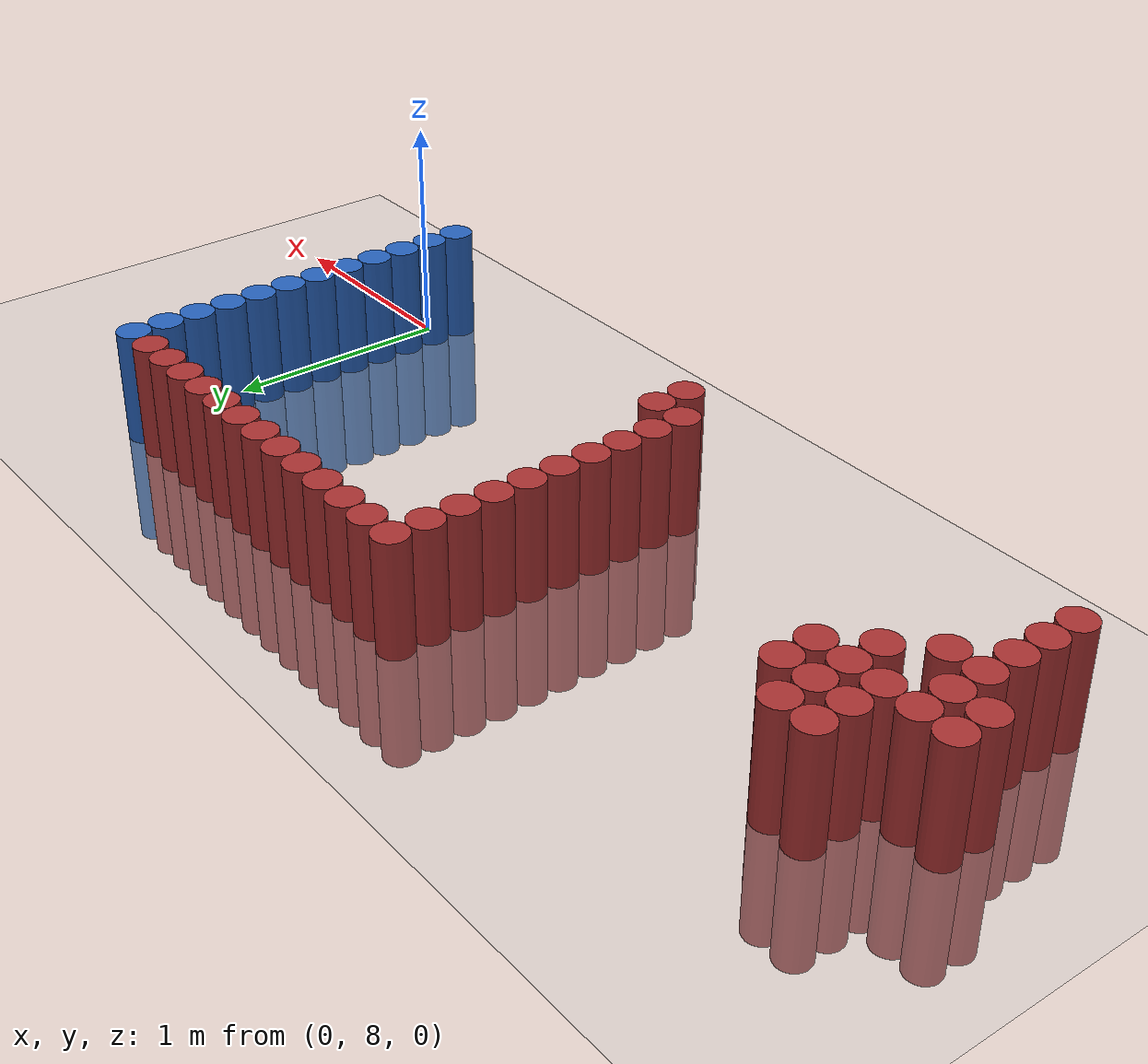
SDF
<sdf version="1.6">
 <world name="default">
  <model name="ground_plane">
   <static>1</static>
   <link name="link">
    <collision name="collision">
     <geometry><plane><normal>0 0 1</normal><size>100 100</size></plane></geometry>
     <surface><friction><ode><mu>100</mu><mu2>50</mu2></ode></friction></surface>
    </collision>
    <visual name="visual">
     <cast_shadows>0</cast_shadows>
     <geometry><plane><normal>0 0 1</normal><size>100 100</size></plane></geometry>
     <material>
      <script><uri>file://media/materials/scripts/gazebo.material</uri><name>Gazebo/Grey</name></script>
     </material>
    </visual>
   </link>
  </model>
  <model name="unit_cylinder_249">
   <static>1</static>
   <pose>-3.975000 8.625000 0.000000 0.000000 0.000000 0.000000</pose>
   <link name="link">
    <inertial>
     <mass>1</mass>
     <inertia><ixx>0.145833</ixx><ixy>0</ixy><ixz>0</ixz><iyy>0.145833</iyy><iyz>0</iyz><izz>0.125</izz></inertia>
    </inertial>
    <collision name="collision">
     <geometry><cylinder><radius>0.075000</radius><length>1</length></cylinder></geometry>
    </collision>
    <visual name="visual">
     <geometry><cylinder><radius>0.075000</radius><length>1</length></cylinder></geometry>
     <material>
      <ambient>0.648000 0.192000 0.192000 1</ambient>
      <diffuse>0.648000 0.192000 0.192000 1</diffuse>
     </material>
     <material>
      <script><name>Gazebo/Grey</name><uri>file://media/materials/scripts/gazebo.material</uri></script>
     </material>
    </visual>
   </link>
  </model>
  <model name="unit_cylinder_250">
   <static>1</static>
   <pose>-3.975000 8.775000 0.000000 0.000000 0.000000 0.000000</pose>
   <link name="link">
    <inertial>
     <mass>1</mass>
     <inertia><ixx>0.145833</ixx><ixy>0</ixy><ixz>0</ixz><iyy>0.145833</iyy><iyz>0</iyz><izz>0.125</izz></inertia>
    </inertial>
    <collision name="collision">
     <geometry><cylinder><radius>0.075000</radius><length>1</length></cylinder></geometry>
    </collision>
    <visual name="visual">
     <geometry><cylinder><radius>0.075000</radius><length>1</length></cylinder></geometry>
     <material>
      <ambient>0.648000 0.192000 0.192000 1</ambient>
      <diffuse>0.648000 0.192000 0.192000 1</diffuse>
     </material>
     <material>
      <script><name>Gazebo/Grey</name><uri>file://media/materials/scripts/gazebo.material</uri></script>
     </material>
    </visual>
   </link>
  </model>
  <model name="unit_cylinder_253">
   <static>1</static>
   <pose>-3.825000 8.025000 0.000000 0.000000 0.000000 0.000000</pose>
   <link name="link">
    <inertial>
     <mass>1</mass>
     <inertia><ixx>0.145833</ixx><ixy>0</ixy><ixz>0</ixz><iyy>0.145833</iyy><iyz>0</iyz><izz>0.125</izz></inertia>
    </inertial>
    <collision name="collision">
     <geometry><cylinder><radius>0.075000</radius><length>1</length></cylinder></geometry>
    </collision>
    <visual name="visual">
     <geometry><cylinder><radius>0.075000</radius><length>1</length></cylinder></geometry>
     <material>
      <ambient>0.648000 0.192000 0.192000 1</ambient>
      <diffuse>0.648000 0.192000 0.192000 1</diffuse>
     </material>
     <material>
      <script><name>Gazebo/Grey</name><uri>file://media/materials/scripts/gazebo.material</uri></script>
     </material>
    </visual>
   </link>
  </model>
  <model name="unit_cylinder_254">
   <static>1</static>
   <pose>-3.825000 8.175000 0.000000 0.000000 0.000000 0.000000</pose>
   <link name="link">
    <inertial>
     <mass>1</mass>
     <inertia><ixx>0.145833</ixx><ixy>0</ixy><ixz>0</ixz><iyy>0.145833</iyy><iyz>0</iyz><izz>0.125</izz></inertia>
    </inertial>
    <collision name="collision">
     <geometry><cylinder><radius>0.075000</radius><length>1</length></cylinder></geometry>
    </collision>
    <visual name="visual">
     <geometry><cylinder><radius>0.075000</radius><length>1</length></cylinder></geometry>
     <material>
      <ambient>0.648000 0.192000 0.192000 1</ambient>
      <diffuse>0.648000 0.192000 0.192000 1</diffuse>
     </material>
     <material>
      <script><name>Gazebo/Grey</name><uri>file://media/materials/scripts/gazebo.material</uri></script>
     </material>
    </visual>
   </link>
  </model>
  <model name="unit_cylinder_255">
   <static>1</static>
   <pose>-3.825000 8.325000 0.000000 0.000000 0.000000 0.000000</pose>
   <link name="link">
    <inertial>
     <mass>1</mass>
     <inertia><ixx>0.145833</ixx><ixy>0</ixy><ixz>0</ixz><iyy>0.145833</iyy><iyz>0</iyz><izz>0.125</izz></inertia>
    </inertial>
    <collision name="collision">
     <geometry><cylinder><radius>0.075000</radius><length>1</length></cylinder></geometry>
    </collision>
    <visual name="visual">
     <geometry><cylinder><radius>0.075000</radius><length>1</length></cylinder></geometry>
     <material>
      <ambient>0.648000 0.192000 0.192000 1</ambient>
      <diffuse>0.648000 0.192000 0.192000 1</diffuse>
     </material>
     <material>
      <script><name>Gazebo/Grey</name><uri>file://media/materials/scripts/gazebo.material</uri></script>
     </material>
    </visual>
   </link>
  </model>
  <model name="unit_cylinder_256">
   <static>1</static>
   <pose>-3.825000 8.475000 0.000000 0.000000 0.000000 0.000000</pose>
   <link name="link">
    <inertial>
     <mass>1</mass>
     <inertia><ixx>0.145833</ixx><ixy>0</ixy><ixz>0</ixz><iyy>0.145833</iyy><iyz>0</iyz><izz>0.125</izz></inertia>
    </inertial>
    <collision name="collision">
     <geometry><cylinder><radius>0.075000</radius><length>1</length></cylinder></geometry>
    </collision>
    <visual name="visual">
     <geometry><cylinder><radius>0.075000</radius><length>1</length></cylinder></geometry>
     <material>
      <ambient>0.648000 0.192000 0.192000 1</ambient>
      <diffuse>0.648000 0.192000 0.192000 1</diffuse>
     </material>
     <material>
      <script><name>Gazebo/Grey</name><uri>file://media/materials/scripts/gazebo.material</uri></script>
     </material>
    </visual>
   </link>
  </model>
  <model name="unit_cylinder_257">
   <static>1</static>
   <pose>-3.825000 8.625000 0.000000 0.000000 0.000000 0.000000</pose>
   <link name="link">
    <inertial>
     <mass>1</mass>
     <inertia><ixx>0.145833</ixx><ixy>0</ixy><ixz>0</ixz><iyy>0.145833</iyy><iyz>0</iyz><izz>0.125</izz></inertia>
    </inertial>
    <collision name="collision">
     <geometry><cylinder><radius>0.075000</radius><length>1</length></cylinder></geometry>
    </collision>
    <visual name="visual">
     <geometry><cylinder><radius>0.075000</radius><length>1</length></cylinder></geometry>
     <material>
      <ambient>0.648000 0.192000 0.192000 1</ambient>
      <diffuse>0.648000 0.192000 0.192000 1</diffuse>
     </material>
     <material>
      <script><name>Gazebo/Grey</name><uri>file://media/materials/scripts/gazebo.material</uri></script>
     </material>
    </visual>
   </link>
  </model>
  <model name="unit_cylinder_258">
   <static>1</static>
   <pose>-3.825000 8.775000 0.000000 0.000000 0.000000 0.000000</pose>
   <link name="link">
    <inertial>
     <mass>1</mass>
     <inertia><ixx>0.145833</ixx><ixy>0</ixy><ixz>0</ixz><iyy>0.145833</iyy><iyz>0</iyz><izz>0.125</izz></inertia>
    </inertial>
    <collision name="collision">
     <geometry><cylinder><radius>0.075000</radius><length>1</length></cylinder></geometry>
    </collision>
    <visual name="visual">
     <geometry><cylinder><radius>0.075000</radius><length>1</length></cylinder></geometry>
     <material>
      <ambient>0.648000 0.192000 0.192000 1</ambient>
      <diffuse>0.648000 0.192000 0.192000 1</diffuse>
     </material>
     <material>
      <script><name>Gazebo/Grey</name><uri>file://media/materials/scripts/gazebo.material</uri></script>
     </material>
    </visual>
   </link>
  </model>
  <model name="unit_cylinder_261">
   <static>1</static>
   <pose>-3.675000 8.475000 0.000000 0.000000 0.000000 0.000000</pose>
   <link name="link">
    <inertial>
     <mass>1</mass>
     <inertia><ixx>0.145833</ixx><ixy>0</ixy><ixz>0</ixz><iyy>0.145833</iyy><iyz>0</iyz><izz>0.125</izz></inertia>
    </inertial>
    <collision name="collision">
     <geometry><cylinder><radius>0.075000</radius><length>1</length></cylinder></geometry>
    </collision>
    <visual name="visual">
     <geometry><cylinder><radius>0.075000</radius><length>1</length></cylinder></geometry>
     <material>
      <ambient>0.648000 0.192000 0.192000 1</ambient>
      <diffuse>0.648000 0.192000 0.192000 1</diffuse>
     </material>
     <material>
      <script><name>Gazebo/Grey</name><uri>file://media/materials/scripts/gazebo.material</uri></script>
     </material>
    </visual>
   </link>
  </model>
  <model name="unit_cylinder_262">
   <static>1</static>
   <pose>-3.675000 8.775000 0.000000 0.000000 0.000000 0.000000</pose>
   <link name="link">
    <inertial>
     <mass>1</mass>
     <inertia><ixx>0.145833</ixx><ixy>0</ixy><ixz>0</ixz><iyy>0.145833</iyy><iyz>0</iyz><izz>0.125</izz></inertia>
    </inertial>
    <collision name="collision">
     <geometry><cylinder><radius>0.075000</radius><length>1</length></cylinder></geometry>
    </collision>
    <visual name="visual">
     <geometry><cylinder><radius>0.075000</radius><length>1</length></cylinder></geometry>
     <material>
      <ambient>0.648000 0.192000 0.192000 1</ambient>
      <diffuse>0.648000 0.192000 0.192000 1</diffuse>
     </material>
     <material>
      <script><name>Gazebo/Grey</name><uri>file://media/materials/scripts/gazebo.material</uri></script>
     </material>
    </visual>
   </link>
  </model>
  <model name="unit_cylinder_263">
   <static>1</static>
   <pose>-3.675000 8.925000 0.000000 0.000000 0.000000 0.000000</pose>
   <link name="link">
    <inertial>
     <mass>1</mass>
     <inertia><ixx>0.145833</ixx><ixy>0</ixy><ixz>0</ixz><iyy>0.145833</iyy><iyz>0</iyz><izz>0.125</izz></inertia>
    </inertial>
    <collision name="collision">
     <geometry><cylinder><radius>0.075000</radius><length>1</length></cylinder></geometry>
    </collision>
    <visual name="visual">
     <geometry><cylinder><radius>0.075000</radius><length>1</length></cylinder></geometry>
     <material>
      <ambient>0.648000 0.192000 0.192000 1</ambient>
      <diffuse>0.648000 0.192000 0.192000 1</diffuse>
     </material>
     <material>
      <script><name>Gazebo/Grey</name><uri>file://media/materials/scripts/gazebo.material</uri></script>
     </material>
    </visual>
   </link>
  </model>
  <model name="unit_cylinder_264">
   <static>1</static>
   <pose>-3.675000 9.075000 0.000000 0.000000 0.000000 0.000000</pose>
   <link name="link">
    <inertial>
     <mass>1</mass>
     <inertia><ixx>0.145833</ixx><ixy>0</ixy><ixz>0</ixz><iyy>0.145833</iyy><iyz>0</iyz><izz>0.125</izz></inertia>
    </inertial>
    <collision name="collision">
     <geometry><cylinder><radius>0.075000</radius><length>1</length></cylinder></geometry>
    </collision>
    <visual name="visual">
     <geometry><cylinder><radius>0.075000</radius><length>1</length></cylinder></geometry>
     <material>
      <ambient>0.648000 0.192000 0.192000 1</ambient>
      <diffuse>0.648000 0.192000 0.192000 1</diffuse>
     </material>
     <material>
      <script><name>Gazebo/Grey</name><uri>file://media/materials/scripts/gazebo.material</uri></script>
     </material>
    </visual>
   </link>
  </model>
  <model name="unit_cylinder_265">
   <static>1</static>
   <pose>-3.525000 8.625000 0.000000 0.000000 0.000000 0.000000</pose>
   <link name="link">
    <inertial>
     <mass>1</mass>
     <inertia><ixx>0.145833</ixx><ixy>0</ixy><ixz>0</ixz><iyy>0.145833</iyy><iyz>0</iyz><izz>0.125</izz></inertia>
    </inertial>
    <collision name="collision">
     <geometry><cylinder><radius>0.075000</radius><length>1</length></cylinder></geometry>
    </collision>
    <visual name="visual">
     <geometry><cylinder><radius>0.075000</radius><length>1</length></cylinder></geometry>
     <material>
      <ambient>0.648000 0.192000 0.192000 1</ambient>
      <diffuse>0.648000 0.192000 0.192000 1</diffuse>
     </material>
     <material>
      <script><name>Gazebo/Grey</name><uri>file://media/materials/scripts/gazebo.material</uri></script>
     </material>
    </visual>
   </link>
  </model>
  <model name="unit_cylinder_266">
   <static>1</static>
   <pose>-3.525000 8.775000 0.000000 0.000000 0.000000 0.000000</pose>
   <link name="link">
    <inertial>
     <mass>1</mass>
     <inertia><ixx>0.145833</ixx><ixy>0</ixy><ixz>0</ixz><iyy>0.145833</iyy><iyz>0</iyz><izz>0.125</izz></inertia>
    </inertial>
    <collision name="collision">
     <geometry><cylinder><radius>0.075000</radius><length>1</length></cylinder></geometry>
    </collision>
    <visual name="visual">
     <geometry><cylinder><radius>0.075000</radius><length>1</length></cylinder></geometry>
     <material>
      <ambient>0.648000 0.192000 0.192000 1</ambient>
      <diffuse>0.648000 0.192000 0.192000 1</diffuse>
     </material>
     <material>
      <script><name>Gazebo/Grey</name><uri>file://media/materials/scripts/gazebo.material</uri></script>
     </material>
    </visual>
   </link>
  </model>
  <model name="unit_cylinder_267">
   <static>1</static>
   <pose>-3.525000 8.925000 0.000000 0.000000 0.000000 0.000000</pose>
   <link name="link">
    <inertial>
     <mass>1</mass>
     <inertia><ixx>0.145833</ixx><ixy>0</ixy><ixz>0</ixz><iyy>0.145833</iyy><iyz>0</iyz><izz>0.125</izz></inertia>
    </inertial>
    <collision name="collision">
     <geometry><cylinder><radius>0.075000</radius><length>1</length></cylinder></geometry>
    </collision>
    <visual name="visual">
     <geometry><cylinder><radius>0.075000</radius><length>1</length></cylinder></geometry>
     <material>
      <ambient>0.648000 0.192000 0.192000 1</ambient>
      <diffuse>0.648000 0.192000 0.192000 1</diffuse>
     </material>
     <material>
      <script><name>Gazebo/Grey</name><uri>file://media/materials/scripts/gazebo.material</uri></script>
     </material>
    </visual>
   </link>
  </model>
  <model name="unit_cylinder_268">
   <static>1</static>
   <pose>-3.525000 9.075000 0.000000 0.000000 0.000000 0.000000</pose>
   <link name="link">
    <inertial>
     <mass>1</mass>
     <inertia><ixx>0.145833</ixx><ixy>0</ixy><ixz>0</ixz><iyy>0.145833</iyy><iyz>0</iyz><izz>0.125</izz></inertia>
    </inertial>
    <collision name="collision">
     <geometry><cylinder><radius>0.075000</radius><length>1</length></cylinder></geometry>
    </collision>
    <visual name="visual">
     <geometry><cylinder><radius>0.075000</radius><length>1</length></cylinder></geometry>
     <material>
      <ambient>0.648000 0.192000 0.192000 1</ambient>
      <diffuse>0.648000 0.192000 0.192000 1</diffuse>
     </material>
     <material>
      <script><name>Gazebo/Grey</name><uri>file://media/materials/scripts/gazebo.material</uri></script>
     </material>
    </visual>
   </link>
  </model>
  <model name="unit_cylinder_271">
   <static>1</static>
   <pose>-3.375000 8.775000 0.000000 0.000000 0.000000 0.000000</pose>
   <link name="link">
    <inertial>
     <mass>1</mass>
     <inertia><ixx>0.145833</ixx><ixy>0</ixy><ixz>0</ixz><iyy>0.145833</iyy><iyz>0</iyz><izz>0.125</izz></inertia>
    </inertial>
    <collision name="collision">
     <geometry><cylinder><radius>0.075000</radius><length>1</length></cylinder></geometry>
    </collision>
    <visual name="visual">
     <geometry><cylinder><radius>0.075000</radius><length>1</length></cylinder></geometry>
     <material>
      <ambient>0.648000 0.192000 0.192000 1</ambient>
      <diffuse>0.648000 0.192000 0.192000 1</diffuse>
     </material>
     <material>
      <script><name>Gazebo/Grey</name><uri>file://media/materials/scripts/gazebo.material</uri></script>
     </material>
    </visual>
   </link>
  </model>
  <model name="unit_cylinder_272">
   <static>1</static>
   <pose>-3.375000 8.925000 0.000000 0.000000 0.000000 0.000000</pose>
   <link name="link">
    <inertial>
     <mass>1</mass>
     <inertia><ixx>0.145833</ixx><ixy>0</ixy><ixz>0</ixz><iyy>0.145833</iyy><iyz>0</iyz><izz>0.125</izz></inertia>
    </inertial>
    <collision name="collision">
     <geometry><cylinder><radius>0.075000</radius><length>1</length></cylinder></geometry>
    </collision>
    <visual name="visual">
     <geometry><cylinder><radius>0.075000</radius><length>1</length></cylinder></geometry>
     <material>
      <ambient>0.648000 0.192000 0.192000 1</ambient>
      <diffuse>0.648000 0.192000 0.192000 1</diffuse>
     </material>
     <material>
      <script><name>Gazebo/Grey</name><uri>file://media/materials/scripts/gazebo.material</uri></script>
     </material>
    </visual>
   </link>
  </model>
  <model name="unit_cylinder_293">
   <static>1</static>
   <pose>-2.025000 8.175000 0.000000 0.000000 0.000000 0.000000</pose>
   <link name="link">
    <inertial>
     <mass>1</mass>
     <inertia><ixx>0.145833</ixx><ixy>0</ixy><ixz>0</ixz><iyy>0.145833</iyy><iyz>0</iyz><izz>0.125</izz></inertia>
    </inertial>
    <collision name="collision">
     <geometry><cylinder><radius>0.075000</radius><length>1</length></cylinder></geometry>
    </collision>
    <visual name="visual">
     <geometry><cylinder><radius>0.075000</radius><length>1</length></cylinder></geometry>
     <material>
      <ambient>0.648000 0.192000 0.192000 1</ambient>
      <diffuse>0.648000 0.192000 0.192000 1</diffuse>
     </material>
     <material>
      <script><name>Gazebo/Grey</name><uri>file://media/materials/scripts/gazebo.material</uri></script>
     </material>
    </visual>
   </link>
  </model>
  <model name="unit_cylinder_294">
   <static>1</static>
   <pose>-2.025000 8.325000 0.000000 0.000000 0.000000 0.000000</pose>
   <link name="link">
    <inertial>
     <mass>1</mass>
     <inertia><ixx>0.145833</ixx><ixy>0</ixy><ixz>0</ixz><iyy>0.145833</iyy><iyz>0</iyz><izz>0.125</izz></inertia>
    </inertial>
    <collision name="collision">
     <geometry><cylinder><radius>0.075000</radius><length>1</length></cylinder></geometry>
    </collision>
    <visual name="visual">
     <geometry><cylinder><radius>0.075000</radius><length>1</length></cylinder></geometry>
     <material>
      <ambient>0.648000 0.192000 0.192000 1</ambient>
      <diffuse>0.648000 0.192000 0.192000 1</diffuse>
     </material>
     <material>
      <script><name>Gazebo/Grey</name><uri>file://media/materials/scripts/gazebo.material</uri></script>
     </material>
    </visual>
   </link>
  </model>
  <model name="unit_cylinder_295">
   <static>1</static>
   <pose>-2.025000 8.475000 0.000000 0.000000 0.000000 0.000000</pose>
   <link name="link">
    <inertial>
     <mass>1</mass>
     <inertia><ixx>0.145833</ixx><ixy>0</ixy><ixz>0</ixz><iyy>0.145833</iyy><iyz>0</iyz><izz>0.125</izz></inertia>
    </inertial>
    <collision name="collision">
     <geometry><cylinder><radius>0.075000</radius><length>1</length></cylinder></geometry>
    </collision>
    <visual name="visual">
     <geometry><cylinder><radius>0.075000</radius><length>1</length></cylinder></geometry>
     <material>
      <ambient>0.648000 0.192000 0.192000 1</ambient>
      <diffuse>0.648000 0.192000 0.192000 1</diffuse>
     </material>
     <material>
      <script><name>Gazebo/Grey</name><uri>file://media/materials/scripts/gazebo.material</uri></script>
     </material>
    </visual>
   </link>
  </model>
  <model name="unit_cylinder_296">
   <static>1</static>
   <pose>-2.025000 8.625000 0.000000 0.000000 0.000000 0.000000</pose>
   <link name="link">
    <inertial>
     <mass>1</mass>
     <inertia><ixx>0.145833</ixx><ixy>0</ixy><ixz>0</ixz><iyy>0.145833</iyy><iyz>0</iyz><izz>0.125</izz></inertia>
    </inertial>
    <collision name="collision">
     <geometry><cylinder><radius>0.075000</radius><length>1</length></cylinder></geometry>
    </collision>
    <visual name="visual">
     <geometry><cylinder><radius>0.075000</radius><length>1</length></cylinder></geometry>
     <material>
      <ambient>0.648000 0.192000 0.192000 1</ambient>
      <diffuse>0.648000 0.192000 0.192000 1</diffuse>
     </material>
     <material>
      <script><name>Gazebo/Grey</name><uri>file://media/materials/scripts/gazebo.material</uri></script>
     </material>
    </visual>
   </link>
  </model>
  <model name="unit_cylinder_297">
   <static>1</static>
   <pose>-2.025000 8.775000 0.000000 0.000000 0.000000 0.000000</pose>
   <link name="link">
    <inertial>
     <mass>1</mass>
     <inertia><ixx>0.145833</ixx><ixy>0</ixy><ixz>0</ixz><iyy>0.145833</iyy><iyz>0</iyz><izz>0.125</izz></inertia>
    </inertial>
    <collision name="collision">
     <geometry><cylinder><radius>0.075000</radius><length>1</length></cylinder></geometry>
    </collision>
    <visual name="visual">
     <geometry><cylinder><radius>0.075000</radius><length>1</length></cylinder></geometry>
     <material>
      <ambient>0.648000 0.192000 0.192000 1</ambient>
      <diffuse>0.648000 0.192000 0.192000 1</diffuse>
     </material>
     <material>
      <script><name>Gazebo/Grey</name><uri>file://media/materials/scripts/gazebo.material</uri></script>
     </material>
    </visual>
   </link>
  </model>
  <model name="unit_cylinder_298">
   <static>1</static>
   <pose>-2.025000 8.925000 0.000000 0.000000 0.000000 0.000000</pose>
   <link name="link">
    <inertial>
     <mass>1</mass>
     <inertia><ixx>0.145833</ixx><ixy>0</ixy><ixz>0</ixz><iyy>0.145833</iyy><iyz>0</iyz><izz>0.125</izz></inertia>
    </inertial>
    <collision name="collision">
     <geometry><cylinder><radius>0.075000</radius><length>1</length></cylinder></geometry>
    </collision>
    <visual name="visual">
     <geometry><cylinder><radius>0.075000</radius><length>1</length></cylinder></geometry>
     <material>
      <ambient>0.648000 0.192000 0.192000 1</ambient>
      <diffuse>0.648000 0.192000 0.192000 1</diffuse>
     </material>
     <material>
      <script><name>Gazebo/Grey</name><uri>file://media/materials/scripts/gazebo.material</uri></script>
     </material>
    </visual>
   </link>
  </model>
  <model name="unit_cylinder_299">
   <static>1</static>
   <pose>-2.025000 9.075000 0.000000 0.000000 0.000000 0.000000</pose>
   <link name="link">
    <inertial>
     <mass>1</mass>
     <inertia><ixx>0.145833</ixx><ixy>0</ixy><ixz>0</ixz><iyy>0.145833</iyy><iyz>0</iyz><izz>0.125</izz></inertia>
    </inertial>
    <collision name="collision">
     <geometry><cylinder><radius>0.075000</radius><length>1</length></cylinder></geometry>
    </collision>
    <visual name="visual">
     <geometry><cylinder><radius>0.075000</radius><length>1</length></cylinder></geometry>
     <material>
      <ambient>0.648000 0.192000 0.192000 1</ambient>
      <diffuse>0.648000 0.192000 0.192000 1</diffuse>
     </material>
     <material>
      <script><name>Gazebo/Grey</name><uri>file://media/materials/scripts/gazebo.material</uri></script>
     </material>
    </visual>
   </link>
  </model>
  <model name="unit_cylinder_300">
   <static>1</static>
   <pose>-2.025000 9.225000 0.000000 0.000000 0.000000 0.000000</pose>
   <link name="link">
    <inertial>
     <mass>1</mass>
     <inertia><ixx>0.145833</ixx><ixy>0</ixy><ixz>0</ixz><iyy>0.145833</iyy><iyz>0</iyz><izz>0.125</izz></inertia>
    </inertial>
    <collision name="collision">
     <geometry><cylinder><radius>0.075000</radius><length>1</length></cylinder></geometry>
    </collision>
    <visual name="visual">
     <geometry><cylinder><radius>0.075000</radius><length>1</length></cylinder></geometry>
     <material>
      <ambient>0.648000 0.192000 0.192000 1</ambient>
      <diffuse>0.648000 0.192000 0.192000 1</diffuse>
     </material>
     <material>
      <script><name>Gazebo/Grey</name><uri>file://media/materials/scripts/gazebo.material</uri></script>
     </material>
    </visual>
   </link>
  </model>
  <model name="unit_cylinder_301">
   <static>1</static>
   <pose>-2.025000 9.375000 0.000000 0.000000 0.000000 0.000000</pose>
   <link name="link">
    <inertial>
     <mass>1</mass>
     <inertia><ixx>0.145833</ixx><ixy>0</ixy><ixz>0</ixz><iyy>0.145833</iyy><iyz>0</iyz><izz>0.125</izz></inertia>
    </inertial>
    <collision name="collision">
     <geometry><cylinder><radius>0.075000</radius><length>1</length></cylinder></geometry>
    </collision>
    <visual name="visual">
     <geometry><cylinder><radius>0.075000</radius><length>1</length></cylinder></geometry>
     <material>
      <ambient>0.648000 0.192000 0.192000 1</ambient>
      <diffuse>0.648000 0.192000 0.192000 1</diffuse>
     </material>
     <material>
      <script><name>Gazebo/Grey</name><uri>file://media/materials/scripts/gazebo.material</uri></script>
     </material>
    </visual>
   </link>
  </model>
  <model name="unit_cylinder_302">
   <static>1</static>
   <pose>-2.025000 9.525000 0.000000 0.000000 0.000000 0.000000</pose>
   <link name="link">
    <inertial>
     <mass>1</mass>
     <inertia><ixx>0.145833</ixx><ixy>0</ixy><ixz>0</ixz><iyy>0.145833</iyy><iyz>0</iyz><izz>0.125</izz></inertia>
    </inertial>
    <collision name="collision">
     <geometry><cylinder><radius>0.075000</radius><length>1</length></cylinder></geometry>
    </collision>
    <visual name="visual">
     <geometry><cylinder><radius>0.075000</radius><length>1</length></cylinder></geometry>
     <material>
      <ambient>0.648000 0.192000 0.192000 1</ambient>
      <diffuse>0.648000 0.192000 0.192000 1</diffuse>
     </material>
     <material>
      <script><name>Gazebo/Grey</name><uri>file://media/materials/scripts/gazebo.material</uri></script>
     </material>
    </visual>
   </link>
  </model>
  <model name="unit_cylinder_322">
   <static>1</static>
   <pose>-1.875000 8.025000 0.000000 0.000000 0.000000 0.000000</pose>
   <link name="link">
    <inertial>
     <mass>1</mass>
     <inertia><ixx>0.145833</ixx><ixy>0</ixy><ixz>0</ixz><iyy>0.145833</iyy><iyz>0</iyz><izz>0.125</izz></inertia>
    </inertial>
    <collision name="collision">
     <geometry><cylinder><radius>0.075000</radius><length>1</length></cylinder></geometry>
    </collision>
    <visual name="visual">
     <geometry><cylinder><radius>0.075000</radius><length>1</length></cylinder></geometry>
     <material>
      <ambient>0.648000 0.192000 0.192000 1</ambient>
      <diffuse>0.648000 0.192000 0.192000 1</diffuse>
     </material>
     <material>
      <script><name>Gazebo/Grey</name><uri>file://media/materials/scripts/gazebo.material</uri></script>
     </material>
    </visual>
   </link>
  </model>
  <model name="unit_cylinder_323">
   <static>1</static>
   <pose>-1.875000 8.175000 0.000000 0.000000 0.000000 0.000000</pose>
   <link name="link">
    <inertial>
     <mass>1</mass>
     <inertia><ixx>0.145833</ixx><ixy>0</ixy><ixz>0</ixz><iyy>0.145833</iyy><iyz>0</iyz><izz>0.125</izz></inertia>
    </inertial>
    <collision name="collision">
     <geometry><cylinder><radius>0.075000</radius><length>1</length></cylinder></geometry>
    </collision>
    <visual name="visual">
     <geometry><cylinder><radius>0.075000</radius><length>1</length></cylinder></geometry>
     <material>
      <ambient>0.648000 0.192000 0.192000 1</ambient>
      <diffuse>0.648000 0.192000 0.192000 1</diffuse>
     </material>
     <material>
      <script><name>Gazebo/Grey</name><uri>file://media/materials/scripts/gazebo.material</uri></script>
     </material>
    </visual>
   </link>
  </model>
  <model name="unit_cylinder_324">
   <static>1</static>
   <pose>-1.875000 9.525000 0.000000 0.000000 0.000000 0.000000</pose>
   <link name="link">
    <inertial>
     <mass>1</mass>
     <inertia><ixx>0.145833</ixx><ixy>0</ixy><ixz>0</ixz><iyy>0.145833</iyy><iyz>0</iyz><izz>0.125</izz></inertia>
    </inertial>
    <collision name="collision">
     <geometry><cylinder><radius>0.075000</radius><length>1</length></cylinder></geometry>
    </collision>
    <visual name="visual">
     <geometry><cylinder><radius>0.075000</radius><length>1</length></cylinder></geometry>
     <material>
      <ambient>0.648000 0.192000 0.192000 1</ambient>
      <diffuse>0.648000 0.192000 0.192000 1</diffuse>
     </material>
     <material>
      <script><name>Gazebo/Grey</name><uri>file://media/materials/scripts/gazebo.material</uri></script>
     </material>
    </visual>
   </link>
  </model>
  <model name="unit_cylinder_326">
   <static>1</static>
   <pose>-1.725000 9.525000 0.000000 0.000000 0.000000 0.000000</pose>
   <link name="link">
    <inertial>
     <mass>1</mass>
     <inertia><ixx>0.145833</ixx><ixy>0</ixy><ixz>0</ixz><iyy>0.145833</iyy><iyz>0</iyz><izz>0.125</izz></inertia>
    </inertial>
    <collision name="collision">
     <geometry><cylinder><radius>0.075000</radius><length>1</length></cylinder></geometry>
    </collision>
    <visual name="visual">
     <geometry><cylinder><radius>0.075000</radius><length>1</length></cylinder></geometry>
     <material>
      <ambient>0.648000 0.192000 0.192000 1</ambient>
      <diffuse>0.648000 0.192000 0.192000 1</diffuse>
     </material>
     <material>
      <script><name>Gazebo/Grey</name><uri>file://media/materials/scripts/gazebo.material</uri></script>
     </material>
    </visual>
   </link>
  </model>
  <model name="unit_cylinder_328">
   <static>1</static>
   <pose>-1.575000 9.525000 0.000000 0.000000 0.000000 0.000000</pose>
   <link name="link">
    <inertial>
     <mass>1</mass>
     <inertia><ixx>0.145833</ixx><ixy>0</ixy><ixz>0</ixz><iyy>0.145833</iyy><iyz>0</iyz><izz>0.125</izz></inertia>
    </inertial>
    <collision name="collision">
     <geometry><cylinder><radius>0.075000</radius><length>1</length></cylinder></geometry>
    </collision>
    <visual name="visual">
     <geometry><cylinder><radius>0.075000</radius><length>1</length></cylinder></geometry>
     <material>
      <ambient>0.648000 0.192000 0.192000 1</ambient>
      <diffuse>0.648000 0.192000 0.192000 1</diffuse>
     </material>
     <material>
      <script><name>Gazebo/Grey</name><uri>file://media/materials/scripts/gazebo.material</uri></script>
     </material>
    </visual>
   </link>
  </model>
  <model name="unit_cylinder_330">
   <static>1</static>
   <pose>-1.425000 9.525000 0.000000 0.000000 0.000000 0.000000</pose>
   <link name="link">
    <inertial>
     <mass>1</mass>
     <inertia><ixx>0.145833</ixx><ixy>0</ixy><ixz>0</ixz><iyy>0.145833</iyy><iyz>0</iyz><izz>0.125</izz></inertia>
    </inertial>
    <collision name="collision">
     <geometry><cylinder><radius>0.075000</radius><length>1</length></cylinder></geometry>
    </collision>
    <visual name="visual">
     <geometry><cylinder><radius>0.075000</radius><length>1</length></cylinder></geometry>
     <material>
      <ambient>0.648000 0.192000 0.192000 1</ambient>
      <diffuse>0.648000 0.192000 0.192000 1</diffuse>
     </material>
     <material>
      <script><name>Gazebo/Grey</name><uri>file://media/materials/scripts/gazebo.material</uri></script>
     </material>
    </visual>
   </link>
  </model>
  <model name="unit_cylinder_332">
   <static>1</static>
   <pose>-1.275000 9.525000 0.000000 0.000000 0.000000 0.000000</pose>
   <link name="link">
    <inertial>
     <mass>1</mass>
     <inertia><ixx>0.145833</ixx><ixy>0</ixy><ixz>0</ixz><iyy>0.145833</iyy><iyz>0</iyz><izz>0.125</izz></inertia>
    </inertial>
    <collision name="collision">
     <geometry><cylinder><radius>0.075000</radius><length>1</length></cylinder></geometry>
    </collision>
    <visual name="visual">
     <geometry><cylinder><radius>0.075000</radius><length>1</length></cylinder></geometry>
     <material>
      <ambient>0.648000 0.192000 0.192000 1</ambient>
      <diffuse>0.648000 0.192000 0.192000 1</diffuse>
     </material>
     <material>
      <script><name>Gazebo/Grey</name><uri>file://media/materials/scripts/gazebo.material</uri></script>
     </material>
    </visual>
   </link>
  </model>
  <model name="unit_cylinder_334">
   <static>1</static>
   <pose>-1.125000 9.525000 0.000000 0.000000 0.000000 0.000000</pose>
   <link name="link">
    <inertial>
     <mass>1</mass>
     <inertia><ixx>0.145833</ixx><ixy>0</ixy><ixz>0</ixz><iyy>0.145833</iyy><iyz>0</iyz><izz>0.125</izz></inertia>
    </inertial>
    <collision name="collision">
     <geometry><cylinder><radius>0.075000</radius><length>1</length></cylinder></geometry>
    </collision>
    <visual name="visual">
     <geometry><cylinder><radius>0.075000</radius><length>1</length></cylinder></geometry>
     <material>
      <ambient>0.648000 0.192000 0.192000 1</ambient>
      <diffuse>0.648000 0.192000 0.192000 1</diffuse>
     </material>
     <material>
      <script><name>Gazebo/Grey</name><uri>file://media/materials/scripts/gazebo.material</uri></script>
     </material>
    </visual>
   </link>
  </model>
  <model name="unit_cylinder_336">
   <static>1</static>
   <pose>-0.975000 9.525000 0.000000 0.000000 0.000000 0.000000</pose>
   <link name="link">
    <inertial>
     <mass>1</mass>
     <inertia><ixx>0.145833</ixx><ixy>0</ixy><ixz>0</ixz><iyy>0.145833</iyy><iyz>0</iyz><izz>0.125</izz></inertia>
    </inertial>
    <collision name="collision">
     <geometry><cylinder><radius>0.075000</radius><length>1</length></cylinder></geometry>
    </collision>
    <visual name="visual">
     <geometry><cylinder><radius>0.075000</radius><length>1</length></cylinder></geometry>
     <material>
      <ambient>0.648000 0.192000 0.192000 1</ambient>
      <diffuse>0.648000 0.192000 0.192000 1</diffuse>
     </material>
     <material>
      <script><name>Gazebo/Grey</name><uri>file://media/materials/scripts/gazebo.material</uri></script>
     </material>
    </visual>
   </link>
  </model>
  <model name="unit_cylinder_338">
   <static>1</static>
   <pose>-0.825000 9.525000 0.000000 0.000000 0.000000 0.000000</pose>
   <link name="link">
    <inertial>
     <mass>1</mass>
     <inertia><ixx>0.145833</ixx><ixy>0</ixy><ixz>0</ixz><iyy>0.145833</iyy><iyz>0</iyz><izz>0.125</izz></inertia>
    </inertial>
    <collision name="collision">
     <geometry><cylinder><radius>0.075000</radius><length>1</length></cylinder></geometry>
    </collision>
    <visual name="visual">
     <geometry><cylinder><radius>0.075000</radius><length>1</length></cylinder></geometry>
     <material>
      <ambient>0.648000 0.192000 0.192000 1</ambient>
      <diffuse>0.648000 0.192000 0.192000 1</diffuse>
     </material>
     <material>
      <script><name>Gazebo/Grey</name><uri>file://media/materials/scripts/gazebo.material</uri></script>
     </material>
    </visual>
   </link>
  </model>
  <model name="unit_cylinder_340">
   <static>1</static>
   <pose>-0.675000 9.525000 0.000000 0.000000 0.000000 0.000000</pose>
   <link name="link">
    <inertial>
     <mass>1</mass>
     <inertia><ixx>0.145833</ixx><ixy>0</ixy><ixz>0</ixz><iyy>0.145833</iyy><iyz>0</iyz><izz>0.125</izz></inertia>
    </inertial>
    <collision name="collision">
     <geometry><cylinder><radius>0.075000</radius><length>1</length></cylinder></geometry>
    </collision>
    <visual name="visual">
     <geometry><cylinder><radius>0.075000</radius><length>1</length></cylinder></geometry>
     <material>
      <ambient>0.648000 0.192000 0.192000 1</ambient>
      <diffuse>0.648000 0.192000 0.192000 1</diffuse>
     </material>
     <material>
      <script><name>Gazebo/Grey</name><uri>file://media/materials/scripts/gazebo.material</uri></script>
     </material>
    </visual>
   </link>
  </model>
  <model name="unit_cylinder_342">
   <static>1</static>
   <pose>-0.525000 9.525000 0.000000 0.000000 0.000000 0.000000</pose>
   <link name="link">
    <inertial>
     <mass>1</mass>
     <inertia><ixx>0.145833</ixx><ixy>0</ixy><ixz>0</ixz><iyy>0.145833</iyy><iyz>0</iyz><izz>0.125</izz></inertia>
    </inertial>
    <collision name="collision">
     <geometry><cylinder><radius>0.075000</radius><length>1</length></cylinder></geometry>
    </collision>
    <visual name="visual">
     <geometry><cylinder><radius>0.075000</radius><length>1</length></cylinder></geometry>
     <material>
      <ambient>0.648000 0.192000 0.192000 1</ambient>
      <diffuse>0.648000 0.192000 0.192000 1</diffuse>
     </material>
     <material>
      <script><name>Gazebo/Grey</name><uri>file://media/materials/scripts/gazebo.material</uri></script>
     </material>
    </visual>
   </link>
  </model>
  <model name="unit_cylinder_344">
   <static>1</static>
   <pose>-0.375000 9.525000 0.000000 0.000000 0.000000 0.000000</pose>
   <link name="link">
    <inertial>
     <mass>1</mass>
     <inertia><ixx>0.145833</ixx><ixy>0</ixy><ixz>0</ixz><iyy>0.145833</iyy><iyz>0</iyz><izz>0.125</izz></inertia>
    </inertial>
    <collision name="collision">
     <geometry><cylinder><radius>0.075000</radius><length>1</length></cylinder></geometry>
    </collision>
    <visual name="visual">
     <geometry><cylinder><radius>0.075000</radius><length>1</length></cylinder></geometry>
     <material>
      <ambient>0.648000 0.192000 0.192000 1</ambient>
      <diffuse>0.648000 0.192000 0.192000 1</diffuse>
     </material>
     <material>
      <script><name>Gazebo/Grey</name><uri>file://media/materials/scripts/gazebo.material</uri></script>
     </material>
    </visual>
   </link>
  </model>
  <model name="unit_cylinder_346">
   <static>1</static>
   <pose>-0.225000 9.525000 0.000000 0.000000 0.000000 0.000000</pose>
   <link name="link">
    <inertial>
     <mass>1</mass>
     <inertia><ixx>0.145833</ixx><ixy>0</ixy><ixz>0</ixz><iyy>0.145833</iyy><iyz>0</iyz><izz>0.125</izz></inertia>
    </inertial>
    <collision name="collision">
     <geometry><cylinder><radius>0.075000</radius><length>1</length></cylinder></geometry>
    </collision>
    <visual name="visual">
     <geometry><cylinder><radius>0.075000</radius><length>1</length></cylinder></geometry>
     <material>
      <ambient>0.648000 0.192000 0.192000 1</ambient>
      <diffuse>0.648000 0.192000 0.192000 1</diffuse>
     </material>
     <material>
      <script><name>Gazebo/Grey</name><uri>file://media/materials/scripts/gazebo.material</uri></script>
     </material>
    </visual>
   </link>
  </model>
  <model name="unit_cylinder_365">
   <static>1</static>
   <pose>-0.075000 7.875000 0.000000 0.000000 0.000000 0.000000</pose>
   <link name="link">
    <inertial>
     <mass>1</mass>
     <inertia><ixx>0.145833</ixx><ixy>0</ixy><ixz>0</ixz><iyy>0.145833</iyy><iyz>0</iyz><izz>0.125</izz></inertia>
    </inertial>
    <collision name="collision">
     <geometry><cylinder><radius>0.075000</radius><length>1</length></cylinder></geometry>
    </collision>
    <visual name="visual">
     <geometry><cylinder><radius>0.075000</radius><length>1</length></cylinder></geometry>
     <material>
      <ambient>0.152000 0.379000 0.720000 1</ambient>
      <diffuse>0.152000 0.379000 0.720000 1</diffuse>
     </material>
     <material>
      <script><name>Gazebo/Grey</name><uri>file://media/materials/scripts/gazebo.material</uri></script>
     </material>
    </visual>
   </link>
  </model>
  <model name="unit_cylinder_366">
   <static>1</static>
   <pose>-0.075000 8.025000 0.000000 0.000000 0.000000 0.000000</pose>
   <link name="link">
    <inertial>
     <mass>1</mass>
     <inertia><ixx>0.145833</ixx><ixy>0</ixy><ixz>0</ixz><iyy>0.145833</iyy><iyz>0</iyz><izz>0.125</izz></inertia>
    </inertial>
    <collision name="collision">
     <geometry><cylinder><radius>0.075000</radius><length>1</length></cylinder></geometry>
    </collision>
    <visual name="visual">
     <geometry><cylinder><radius>0.075000</radius><length>1</length></cylinder></geometry>
     <material>
      <ambient>0.152000 0.379000 0.720000 1</ambient>
      <diffuse>0.152000 0.379000 0.720000 1</diffuse>
     </material>
     <material>
      <script><name>Gazebo/Grey</name><uri>file://media/materials/scripts/gazebo.material</uri></script>
     </material>
    </visual>
   </link>
  </model>
  <model name="unit_cylinder_367">
   <static>1</static>
   <pose>-0.075000 8.175000 0.000000 0.000000 0.000000 0.000000</pose>
   <link name="link">
    <inertial>
     <mass>1</mass>
     <inertia><ixx>0.145833</ixx><ixy>0</ixy><ixz>0</ixz><iyy>0.145833</iyy><iyz>0</iyz><izz>0.125</izz></inertia>
    </inertial>
    <collision name="collision">
     <geometry><cylinder><radius>0.075000</radius><length>1</length></cylinder></geometry>
    </collision>
    <visual name="visual">
     <geometry><cylinder><radius>0.075000</radius><length>1</length></cylinder></geometry>
     <material>
      <ambient>0.152000 0.379000 0.720000 1</ambient>
      <diffuse>0.152000 0.379000 0.720000 1</diffuse>
     </material>
     <material>
      <script><name>Gazebo/Grey</name><uri>file://media/materials/scripts/gazebo.material</uri></script>
     </material>
    </visual>
   </link>
  </model>
  <model name="unit_cylinder_368">
   <static>1</static>
   <pose>-0.075000 8.325000 0.000000 0.000000 0.000000 0.000000</pose>
   <link name="link">
    <inertial>
     <mass>1</mass>
     <inertia><ixx>0.145833</ixx><ixy>0</ixy><ixz>0</ixz><iyy>0.145833</iyy><iyz>0</iyz><izz>0.125</izz></inertia>
    </inertial>
    <collision name="collision">
     <geometry><cylinder><radius>0.075000</radius><length>1</length></cylinder></geometry>
    </collision>
    <visual name="visual">
     <geometry><cylinder><radius>0.075000</radius><length>1</length></cylinder></geometry>
     <material>
      <ambient>0.152000 0.379000 0.720000 1</ambient>
      <diffuse>0.152000 0.379000 0.720000 1</diffuse>
     </material>
     <material>
      <script><name>Gazebo/Grey</name><uri>file://media/materials/scripts/gazebo.material</uri></script>
     </material>
    </visual>
   </link>
  </model>
  <model name="unit_cylinder_369">
   <static>1</static>
   <pose>-0.075000 8.475000 0.000000 0.000000 0.000000 0.000000</pose>
   <link name="link">
    <inertial>
     <mass>1</mass>
     <inertia><ixx>0.145833</ixx><ixy>0</ixy><ixz>0</ixz><iyy>0.145833</iyy><iyz>0</iyz><izz>0.125</izz></inertia>
    </inertial>
    <collision name="collision">
     <geometry><cylinder><radius>0.075000</radius><length>1</length></cylinder></geometry>
    </collision>
    <visual name="visual">
     <geometry><cylinder><radius>0.075000</radius><length>1</length></cylinder></geometry>
     <material>
      <ambient>0.152000 0.379000 0.720000 1</ambient>
      <diffuse>0.152000 0.379000 0.720000 1</diffuse>
     </material>
     <material>
      <script><name>Gazebo/Grey</name><uri>file://media/materials/scripts/gazebo.material</uri></script>
     </material>
    </visual>
   </link>
  </model>
  <model name="unit_cylinder_370">
   <static>1</static>
   <pose>-0.075000 8.625000 0.000000 0.000000 0.000000 0.000000</pose>
   <link name="link">
    <inertial>
     <mass>1</mass>
     <inertia><ixx>0.145833</ixx><ixy>0</ixy><ixz>0</ixz><iyy>0.145833</iyy><iyz>0</iyz><izz>0.125</izz></inertia>
    </inertial>
    <collision name="collision">
     <geometry><cylinder><radius>0.075000</radius><length>1</length></cylinder></geometry>
    </collision>
    <visual name="visual">
     <geometry><cylinder><radius>0.075000</radius><length>1</length></cylinder></geometry>
     <material>
      <ambient>0.152000 0.379000 0.720000 1</ambient>
      <diffuse>0.152000 0.379000 0.720000 1</diffuse>
     </material>
     <material>
      <script><name>Gazebo/Grey</name><uri>file://media/materials/scripts/gazebo.material</uri></script>
     </material>
    </visual>
   </link>
  </model>
  <model name="unit_cylinder_371">
   <static>1</static>
   <pose>-0.075000 8.775000 0.000000 0.000000 0.000000 0.000000</pose>
   <link name="link">
    <inertial>
     <mass>1</mass>
     <inertia><ixx>0.145833</ixx><ixy>0</ixy><ixz>0</ixz><iyy>0.145833</iyy><iyz>0</iyz><izz>0.125</izz></inertia>
    </inertial>
    <collision name="collision">
     <geometry><cylinder><radius>0.075000</radius><length>1</length></cylinder></geometry>
    </collision>
    <visual name="visual">
     <geometry><cylinder><radius>0.075000</radius><length>1</length></cylinder></geometry>
     <material>
      <ambient>0.152000 0.379000 0.720000 1</ambient>
      <diffuse>0.152000 0.379000 0.720000 1</diffuse>
     </material>
     <material>
      <script><name>Gazebo/Grey</name><uri>file://media/materials/scripts/gazebo.material</uri></script>
     </material>
    </visual>
   </link>
  </model>
  <model name="unit_cylinder_372">
   <static>1</static>
   <pose>-0.075000 8.925000 0.000000 0.000000 0.000000 0.000000</pose>
   <link name="link">
    <inertial>
     <mass>1</mass>
     <inertia><ixx>0.145833</ixx><ixy>0</ixy><ixz>0</ixz><iyy>0.145833</iyy><iyz>0</iyz><izz>0.125</izz></inertia>
    </inertial>
    <collision name="collision">
     <geometry><cylinder><radius>0.075000</radius><length>1</length></cylinder></geometry>
    </collision>
    <visual name="visual">
     <geometry><cylinder><radius>0.075000</radius><length>1</length></cylinder></geometry>
     <material>
      <ambient>0.152000 0.379000 0.720000 1</ambient>
      <diffuse>0.152000 0.379000 0.720000 1</diffuse>
     </material>
     <material>
      <script><name>Gazebo/Grey</name><uri>file://media/materials/scripts/gazebo.material</uri></script>
     </material>
    </visual>
   </link>
  </model>
  <model name="unit_cylinder_373">
   <static>1</static>
   <pose>-0.075000 9.075000 0.000000 0.000000 0.000000 0.000000</pose>
   <link name="link">
    <inertial>
     <mass>1</mass>
     <inertia><ixx>0.145833</ixx><ixy>0</ixy><ixz>0</ixz><iyy>0.145833</iyy><iyz>0</iyz><izz>0.125</izz></inertia>
    </inertial>
    <collision name="collision">
     <geometry><cylinder><radius>0.075000</radius><length>1</length></cylinder></geometry>
    </collision>
    <visual name="visual">
     <geometry><cylinder><radius>0.075000</radius><length>1</length></cylinder></geometry>
     <material>
      <ambient>0.152000 0.379000 0.720000 1</ambient>
      <diffuse>0.152000 0.379000 0.720000 1</diffuse>
     </material>
     <material>
      <script><name>Gazebo/Grey</name><uri>file://media/materials/scripts/gazebo.material</uri></script>
     </material>
    </visual>
   </link>
  </model>
  <model name="unit_cylinder_374">
   <static>1</static>
   <pose>-0.075000 9.225000 0.000000 0.000000 0.000000 0.000000</pose>
   <link name="link">
    <inertial>
     <mass>1</mass>
     <inertia><ixx>0.145833</ixx><ixy>0</ixy><ixz>0</ixz><iyy>0.145833</iyy><iyz>0</iyz><izz>0.125</izz></inertia>
    </inertial>
    <collision name="collision">
     <geometry><cylinder><radius>0.075000</radius><length>1</length></cylinder></geometry>
    </collision>
    <visual name="visual">
     <geometry><cylinder><radius>0.075000</radius><length>1</length></cylinder></geometry>
     <material>
      <ambient>0.152000 0.379000 0.720000 1</ambient>
      <diffuse>0.152000 0.379000 0.720000 1</diffuse>
     </material>
     <material>
      <script><name>Gazebo/Grey</name><uri>file://media/materials/scripts/gazebo.material</uri></script>
     </material>
    </visual>
   </link>
  </model>
  <model name="unit_cylinder_375">
   <static>1</static>
   <pose>-0.075000 9.375000 0.000000 0.000000 0.000000 0.000000</pose>
   <link name="link">
    <inertial>
     <mass>1</mass>
     <inertia><ixx>0.145833</ixx><ixy>0</ixy><ixz>0</ixz><iyy>0.145833</iyy><iyz>0</iyz><izz>0.125</izz></inertia>
    </inertial>
    <collision name="collision">
     <geometry><cylinder><radius>0.075000</radius><length>1</length></cylinder></geometry>
    </collision>
    <visual name="visual">
     <geometry><cylinder><radius>0.075000</radius><length>1</length></cylinder></geometry>
     <material>
      <ambient>0.152000 0.379000 0.720000 1</ambient>
      <diffuse>0.152000 0.379000 0.720000 1</diffuse>
     </material>
     <material>
      <script><name>Gazebo/Grey</name><uri>file://media/materials/scripts/gazebo.material</uri></script>
     </material>
    </visual>
   </link>
  </model>
  <model name="unit_cylinder_376">
   <static>1</static>
   <pose>-0.075000 9.525000 0.000000 0.000000 0.000000 0.000000</pose>
   <link name="link">
    <inertial>
     <mass>1</mass>
     <inertia><ixx>0.145833</ixx><ixy>0</ixy><ixz>0</ixz><iyy>0.145833</iyy><iyz>0</iyz><izz>0.125</izz></inertia>
    </inertial>
    <collision name="collision">
     <geometry><cylinder><radius>0.075000</radius><length>1</length></cylinder></geometry>
    </collision>
    <visual name="visual">
     <geometry><cylinder><radius>0.075000</radius><length>1</length></cylinder></geometry>
     <material>
      <ambient>0.152000 0.379000 0.720000 1</ambient>
      <diffuse>0.152000 0.379000 0.720000 1</diffuse>
     </material>
     <material>
      <script><name>Gazebo/Grey</name><uri>file://media/materials/scripts/gazebo.material</uri></script>
     </material>
    </visual>
   </link>
  </model>
 </world>
</sdf>
